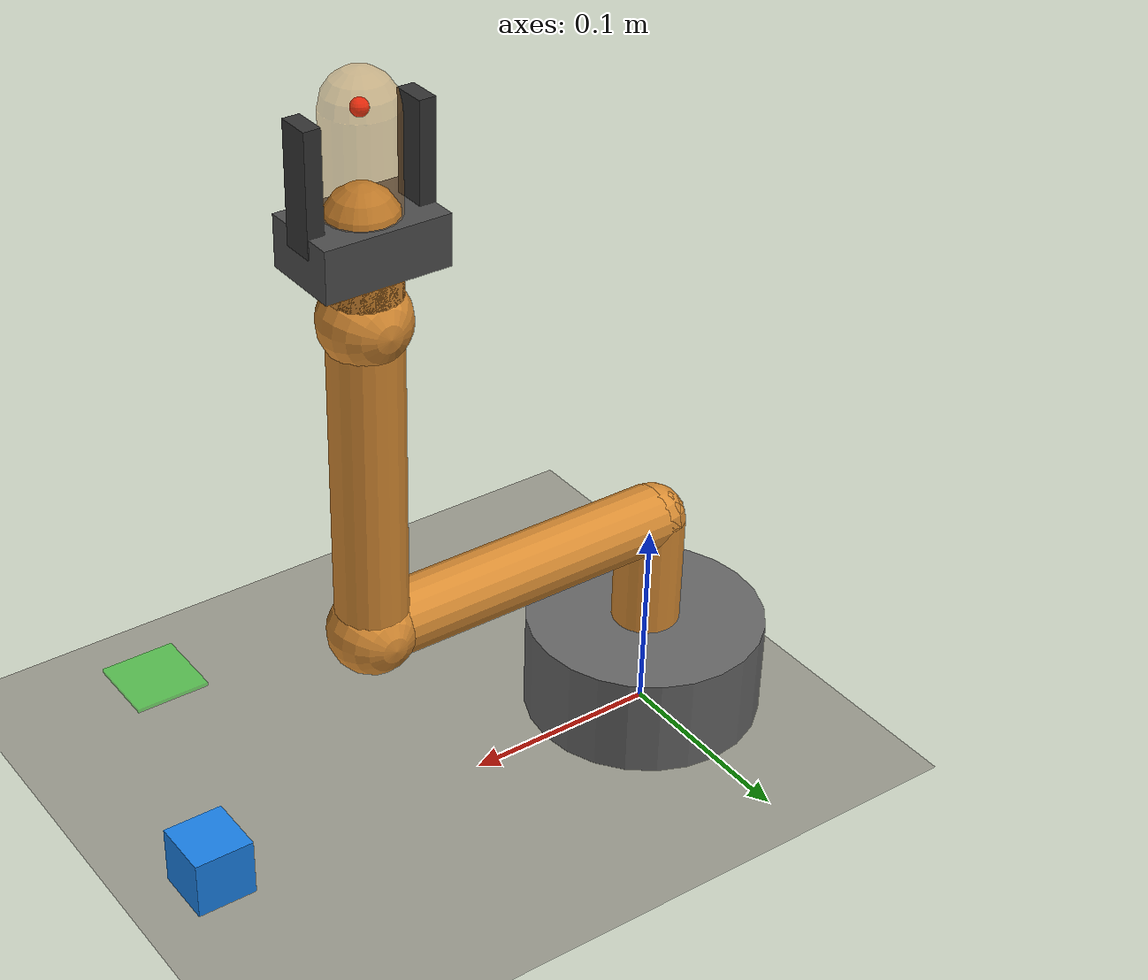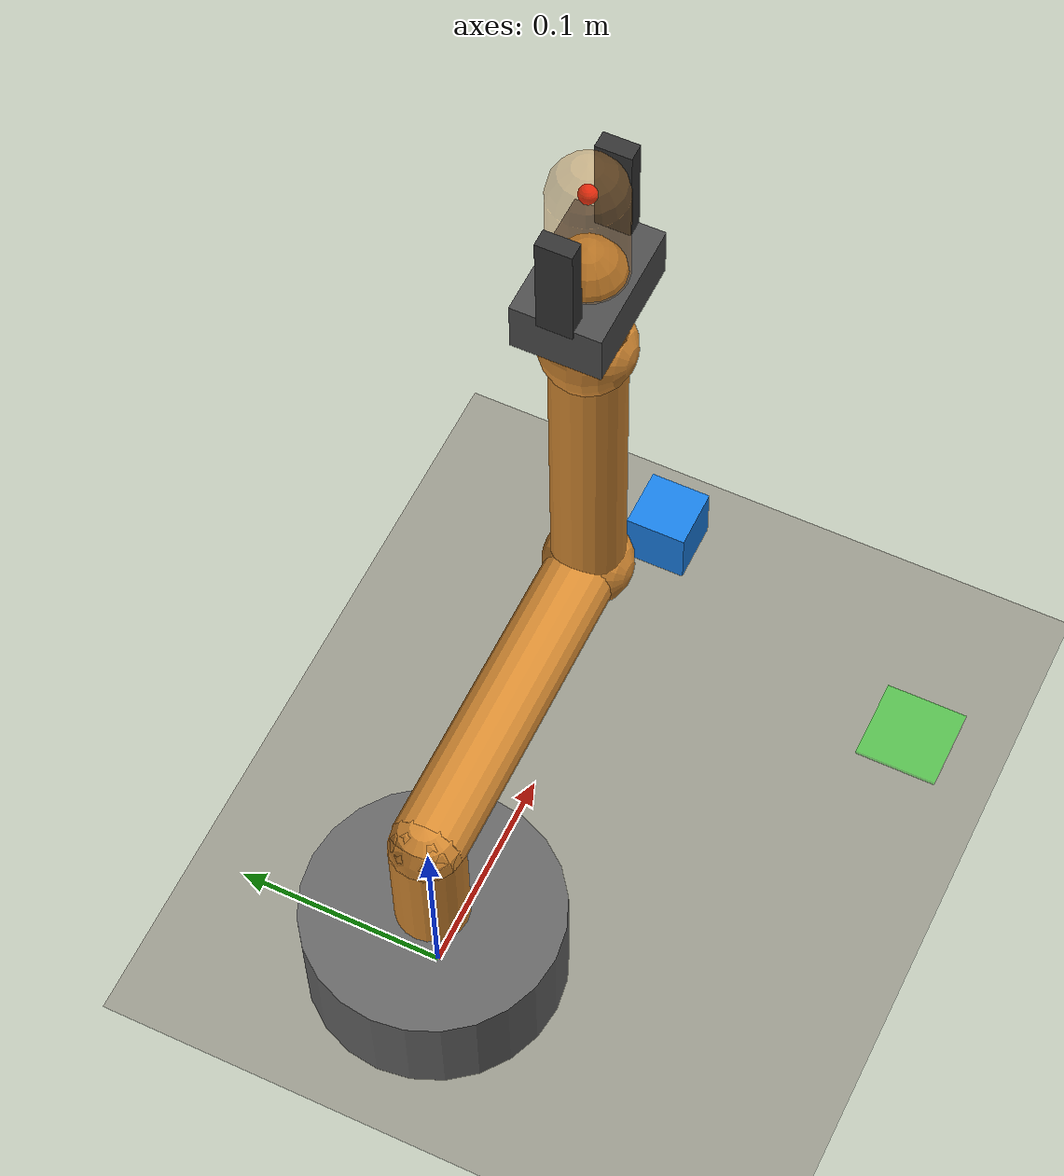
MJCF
<mujoco model="embodied-arm-desk-6">
  <compiler angle="radian" autolimits="true"/>
  <option timestep="0.002" integrator="implicitfast" gravity="0 0 -9.81"/>
  <default><geom contype="1" conaffinity="1" friction="0.8 0.01 0.001"/></default>
  <worldbody>
    <geom name="bench" type="plane" size="1 1 0.1" rgba="0.6 0.6 0.55 1"/>
    <light pos="0 0 2" dir="0 0 -1"/>
    <geom name="base" type="cylinder" pos="0 0 0.026" size="0.06 0.026" contype="0" conaffinity="0" rgba="0.4 0.4 0.4 1"/>
    <body name="block" pos="0.25 0 0.015"><freejoint name="block"/><geom name="block" type="box" size="0.015 0.015 0.015" mass="0.05" friction="1.0 0.02 0.001" condim="4" rgba="0.1 0.5 0.9 1"/></body>
    <site name="place" pos="0.2 -0.15 0.001" size="0.02 0.02 0.001" type="box" rgba="0 1 0 0.4"/>
    <body name="link1" pos="0 0 0" quat="1 0 0 0">
      <joint name="j1" type="hinge" axis="0 0 1" range="-2.617994 2.617994" armature="0.01" damping="0.623686"/>
      <geom name="link1" type="capsule" fromto="0 0 0 0 0 0.11" size="0.017" mass="0.341" rgba="0.85 0.55 0.2 1"/>
      <body name="link2" pos="0 0 0.11" quat="0.707107 0.707107 0 0">
        <joint name="j2" type="hinge" axis="0 0 1" range="-1.745329 1.745329" armature="0.02" damping="1.247373"/>
        <geom name="link2" type="capsule" fromto="0 0 0 0.16 0 0" size="0.017" mass="0.158" rgba="0.85 0.55 0.2 1"/>
        <body name="link3" pos="0.16 0 0" quat="1 0 0 0">
          <joint name="j3" type="hinge" axis="0 0 1" range="-4.18879 1.047198" armature="0.01" damping="0.623686"/>
          <geom name="link3" type="sphere" size="0.021" mass="0.094" rgba="0.85 0.55 0.2 1"/>
          <body name="link4" pos="0 0 0" quat="0.707107 -0.707107 0 0">
            <joint name="j4" type="hinge" axis="0 0 1" range="-2.617994 2.617994" armature="0.01" damping="0.623686"/>
            <geom name="link4" type="capsule" fromto="0 0 0 0 0 0.16" size="0.017" mass="0.076" rgba="0.85 0.55 0.2 1"/>
            <body name="link5" pos="0 0 0.16" quat="0.707107 0.707107 0 0">
              <joint name="j5" type="hinge" axis="0 0 1" range="-2.356194 2.356194" armature="0.01" damping="0.623686"/>
              <geom name="link5" type="sphere" size="0.021" mass="0.149" rgba="0.85 0.55 0.2 1"/>
              <body name="link6" pos="0 0 0" quat="0.707107 -0.707107 0 0">
                <joint name="j6" type="hinge" axis="0 0 1" range="-2.96706 2.96706" armature="0.01" damping="0.623686"/>
                <geom name="link6-mass" type="capsule" fromto="0 0 0 0 0 0.095" size="0.017" mass="0.143" contype="0" conaffinity="0" rgba="0.85 0.55 0.2 0.35"/>
      <geom name="link6" type="capsule" fromto="0 0 0 0 0 0.045" size="0.017" mass="0.000001" rgba="0.85 0.55 0.2 1"/>
                <geom name="palm" type="box" pos="0 0 0.037" size="0.03 0.02 0.012" mass="0.001" rgba="0.3 0.3 0.3 1"/>
                <geom name="jaw-fixed" type="box" pos="-0.0265 0 0.07" size="0.004 0.008 0.025" mass="0.001" friction="1.2 0.02 0.001" condim="4" rgba="0.2 0.2 0.2 1"/>
                <body name="jaw" pos="0.0265 0 0.04">
                  <joint name="grip" type="hinge" axis="0 1 0" range="-0.6 0.05" damping="0.05" armature="0.01"/>
                  <geom name="jaw-moving" type="box" pos="0 0 0.0275" size="0.004 0.008 0.0275" mass="0.001" friction="1.2 0.02 0.001" condim="4" rgba="0.2 0.2 0.2 1"/>
                </body>
                <site name="tcp" pos="0 0 0.095" size="0.004" rgba="1 0 0 1"/>
                <body name="payload" pos="0 0 0.095"><geom name="payload" type="sphere" size="0.005" mass="0.000001" contype="0" conaffinity="0" rgba="0 0 1 0.3"/></body>
              </body>
            </body>
          </body>
        </body>
      </body>
    </body>
  </worldbody>
  <contact><exclude body1="world" body2="link1"/><exclude body1="link1" body2="link2"/><exclude body1="link1" body2="link3"/><exclude body1="link1" body2="link4"/><exclude body1="link1" body2="link5"/><exclude body1="link1" body2="link6"/><exclude body1="link1" body2="jaw"/><exclude body1="link2" body2="link3"/><exclude body1="link2" body2="link4"/><exclude body1="link2" body2="link5"/><exclude body1="link2" body2="link6"/><exclude body1="link2" body2="jaw"/><exclude body1="link3" body2="link4"/><exclude body1="link3" body2="link5"/><exclude body1="link3" body2="link6"/><exclude body1="link3" body2="jaw"/><exclude body1="link4" body2="link5"/><exclude body1="link4" body2="link6"/><exclude body1="link4" body2="jaw"/><exclude body1="link5" body2="link6"/><exclude body1="link5" body2="jaw"/><exclude body1="link6" body2="jaw"/></contact>
  <actuator>
    <position name="j1" joint="j1" kp="58.8399" forcelimited="true" forcerange="-2.941995 2.941995" ctrlrange="-2.617994 2.617994"/>
    <position name="j2" joint="j2" kp="117.6798" forcelimited="true" forcerange="-5.88399 5.88399" ctrlrange="-1.745329 1.745329"/>
    <position name="j3" joint="j3" kp="58.8399" forcelimited="true" forcerange="-2.941995 2.941995" ctrlrange="-4.18879 1.047198"/>
    <position name="j4" joint="j4" kp="58.8399" forcelimited="true" forcerange="-2.941995 2.941995" ctrlrange="-2.617994 2.617994"/>
    <position name="j5" joint="j5" kp="58.8399" forcelimited="true" forcerange="-2.941995 2.941995" ctrlrange="-2.356194 2.356194"/>
    <position name="j6" joint="j6" kp="58.8399" forcelimited="true" forcerange="-2.941995 2.941995" ctrlrange="-2.96706 2.96706"/>
    <position name="grip" joint="grip" kp="1.5" forcelimited="true" forcerange="-0.15 0.15" ctrlrange="-0.6 0.05"/>
  </actuator>
</mujoco>
